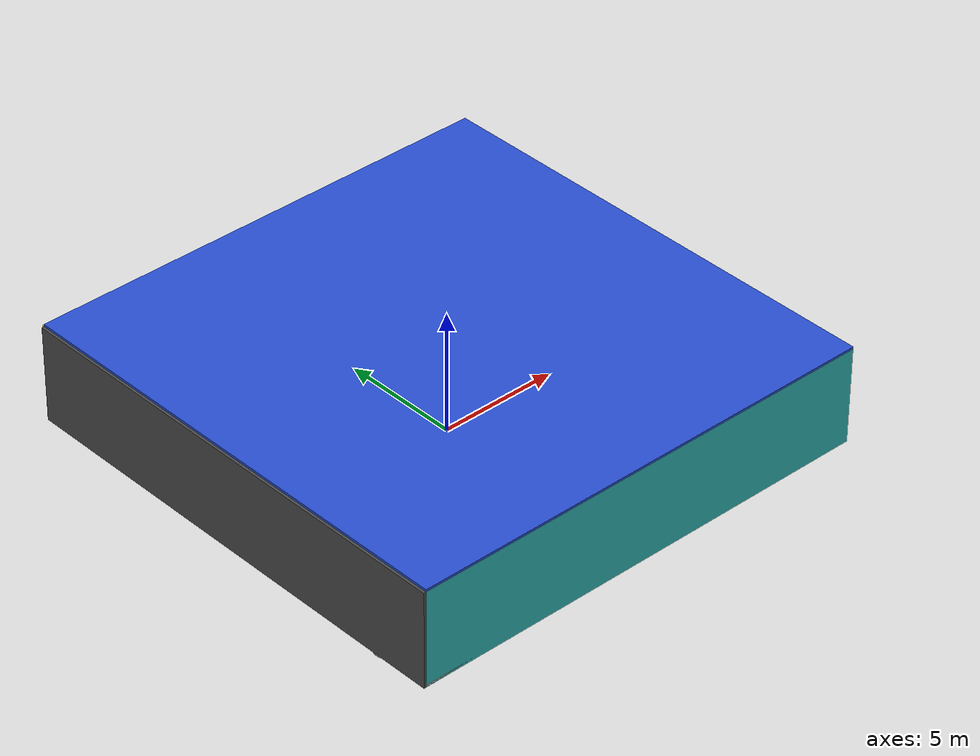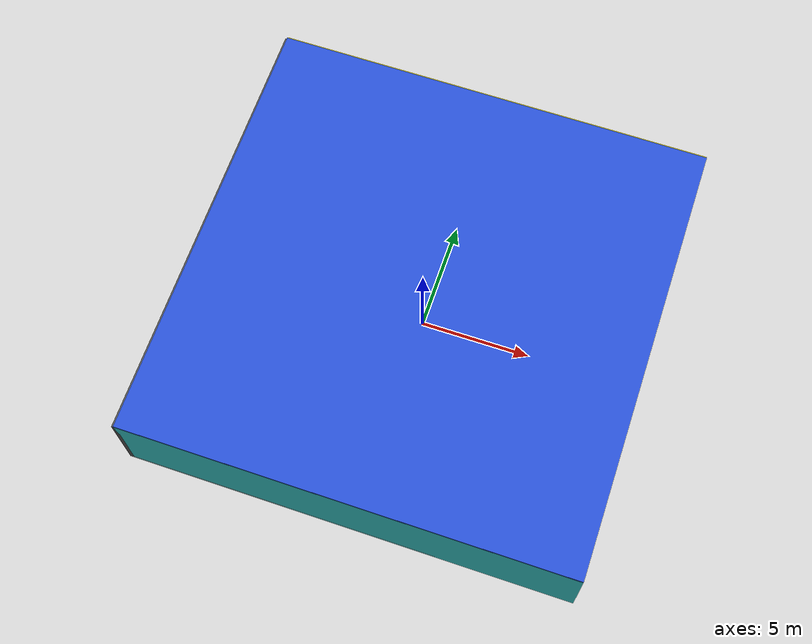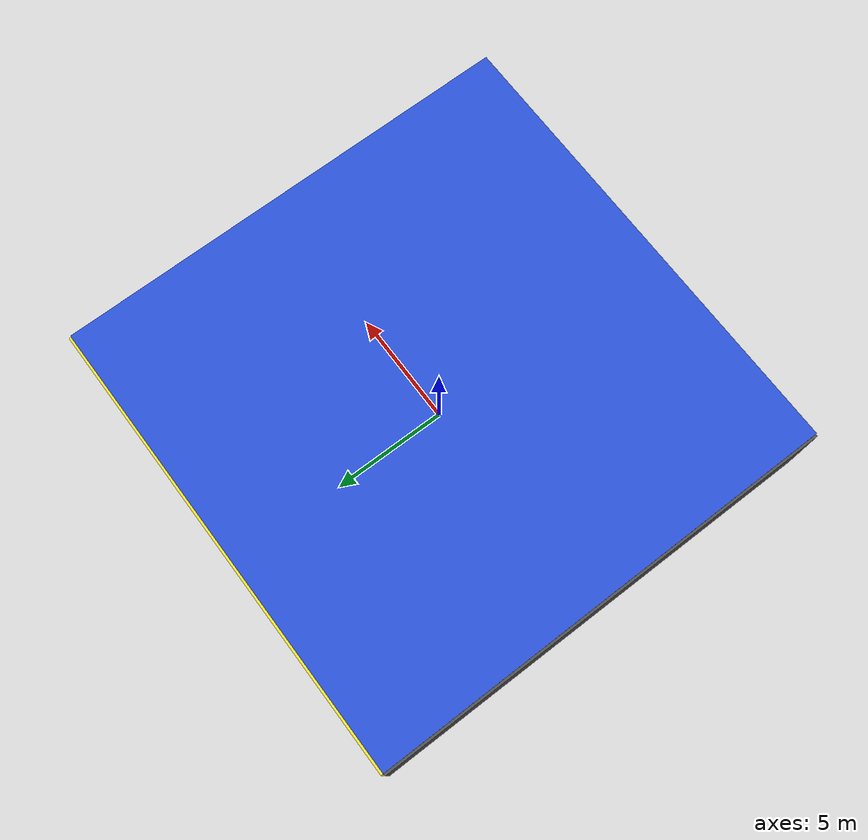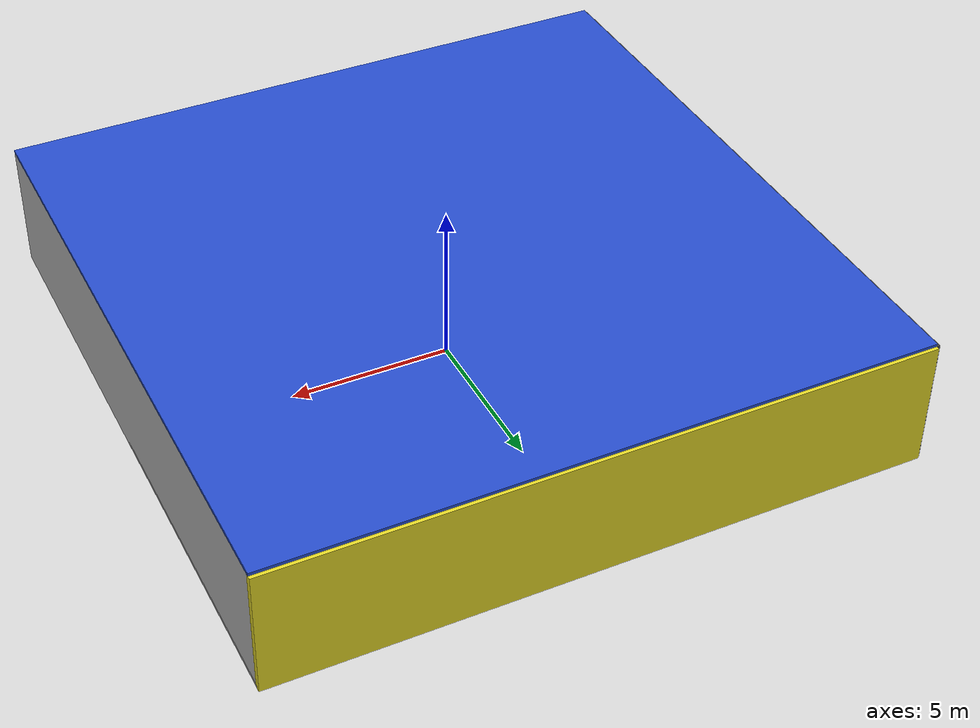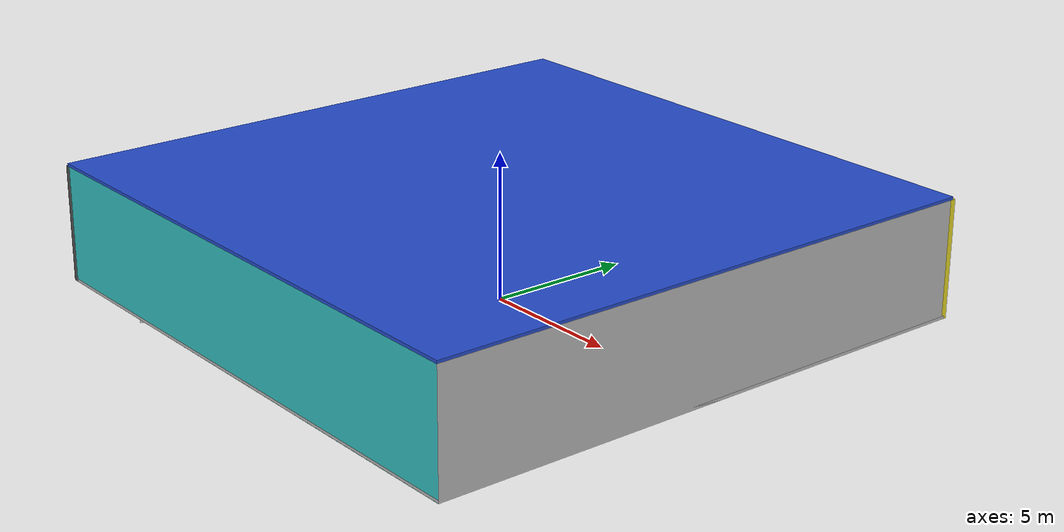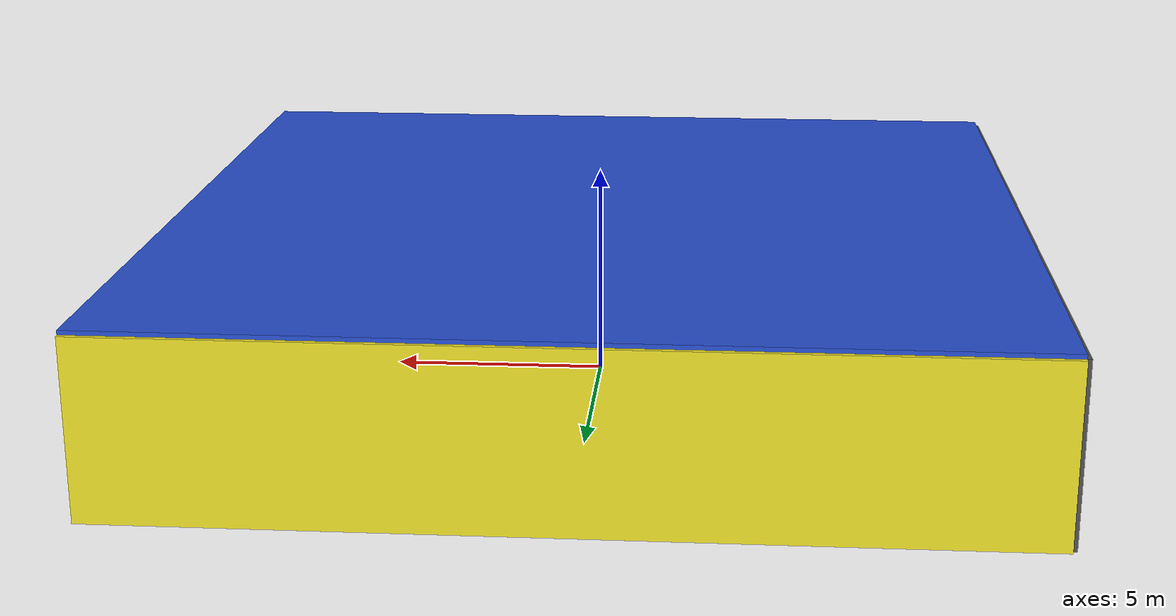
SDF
<sdf version="1.4">
 <world name="default">
  <physics type="ode">
   <max_step_size>0.001</max_step_size>
   <real_time_factor>1</real_time_factor>
   <real_time_update_rate>1000</real_time_update_rate>
   <gravity>0 0 -9.8</gravity>
  </physics>
  <scene><ambient>0.4 0.4 0.4 1</ambient><background>0.7 0.7 0.7 1</background><shadows>1</shadows></scene>
  <model name="Surrounding">
   <static>1</static>
   <link name="Ceiling">
    <collision name="Ceiling_Collision"><geometry><box><size>20 20 0.1</size></box></geometry></collision>
    <visual name="Ceiling_Visual">
     <geometry><box><size>20 20 0.1</size></box></geometry>
     <material>
      <script><uri>file://media/materials/scripts/gazebo.material</uri><name>Gazebo/Blue</name></script>
     </material>
    </visual>
    <pose>0 0 4.05 0 0 0</pose>
   </link>
   <link name="Wall_South">
    <collision name="Wall_South_Collision">
     <geometry><box><size>20 0 4</size></box></geometry>
     <pose>0 0 2 0 -0 0</pose>
    </collision>
    <visual name="Wall_South_Visual">
     <pose>0 0 2 0 -0 0</pose>
     <geometry><box><size>20 0 4</size></box></geometry>
     <material>
      <script><uri>file://media/materials/scripts/gazebo.material</uri><name>Gazebo/TurquoiseGlow</name></script>
     </material>
    </visual>
    <velocity_decay><linear>0</linear><angular>0</angular></velocity_decay>
    <pose>0 -10 0 0 -0 0</pose>
   </link>
   <link name="Wall_East">
    <collision name="Wall_21_Collision">
     <geometry><box><size>20 0 4</size></box></geometry>
     <pose>0 0 2 0 -0 0</pose>
    </collision>
    <visual name="Wall_21_Visual">
     <pose>0 0 2 0 -0 0</pose>
     <geometry><box><size>20 0 4</size></box></geometry>
     <material>
      <script><uri>file://media/materials/scripts/gazebo.material</uri><name>Gazebo/JointAnchor</name></script>
     </material>
    </visual>
    <velocity_decay><linear>0</linear><angular>0</angular></velocity_decay>
    <pose>10 0 0 0 -0 1.5708</pose>
   </link>
   <link name="Wall_North">
    <collision name="Wall_22_Collision">
     <geometry><box><size>20 0.2 4</size></box></geometry>
     <pose>0 0 2 0 -0 0</pose>
    </collision>
    <visual name="Wall_22_Visual">
     <pose>0 0 2 0 -0 0</pose>
     <geometry><box><size>20 0.2 4</size></box></geometry>
     <material>
      <script><uri>file://media/materials/scripts/gazebo.material</uri><name>Gazebo/YellowGlow</name></script>
     </material>
    </visual>
    <velocity_decay><linear>0</linear><angular>0</angular></velocity_decay>
    <pose>0 10 0 0 -0 0</pose>
   </link>
   <link name="Wall_West">
    <collision name="Wall_23_Collision">
     <geometry><box><size>20 0.2 4</size></box></geometry>
     <pose>0 0 2 0 -0 0</pose>
    </collision>
    <visual name="Wall_23_Visual">
     <pose>0 0 2 0 -0 0</pose>
     <geometry><box><size>20 0.2 4</size></box></geometry>
     <material>
      <script><uri>file://media/materials/scripts/gazebo.material</uri><name>Gazebo/Road</name></script>
     </material>
    </visual>
    <velocity_decay><linear>0</linear><angular>0</angular></velocity_decay>
    <pose>-10 0 0 0 0 -1.5708</pose>
   </link>
   <link name="Ground_link">
    <collision name="collision">
     <pose>0 0 .05 0 -0 0</pose>
     <geometry><box><size>20 20 0.1</size></box></geometry>
    </collision>
    <visual name="visual">
     <pose>0 0 .05 0 -0 0</pose>
     <geometry><box><size>20 20 0.1</size></box></geometry>
     <material>
      <script><uri>file://media/materials/scripts/gazebo.material</uri><name>Gazebo/PioneerBody</name></script>
     </material>
    </visual>
   </link>
   <static>1</static>
  </model>
  <spherical_coordinates>
   <surface_model>EARTH_WGS84</surface_model>
   <latitude_deg>0</latitude_deg>
   <longitude_deg>0</longitude_deg>
   <elevation>0</elevation>
   <heading_deg>0</heading_deg>
  </spherical_coordinates>
  <light name="lightball_0" type="diffuse">
   <diffuse>0.8 0.8 0.8 1</diffuse>
   <specular>0.2 0.2 0.2 1</specular>
   <attenuation>
    <range>100</range>
    <constant>0.7</constant>
    <linear>0.01</linear>
    <quadratic>0.001</quadratic>
   </attenuation>
   <direction>-0.5 0.1 -0.9</direction>
   <pose>3.37047927858 -3.32881597295 0.759475851625 0 0 0</pose>
  </light>
  <light name="lightball_1" type="diffuse">
   <diffuse>0.8 0.8 0.8 1</diffuse>
   <specular>0.2 0.2 0.2 1</specular>
   <attenuation>
    <range>100</range>
    <constant>0.7</constant>
    <linear>0.01</linear>
    <quadratic>0.001</quadratic>
   </attenuation>
   <direction>-0.5 0.1 -0.9</direction>
   <pose>6.60399014232 4.44696705426 1.05276903489 0 0 0</pose>
  </light>
  <light name="lightball_2" type="diffuse">
   <diffuse>0.8 0.8 0.8 1</diffuse>
   <specular>0.2 0.2 0.2 1</specular>
   <attenuation>
    <range>100</range>
    <constant>0.7</constant>
    <linear>0.01</linear>
    <quadratic>0.001</quadratic>
   </attenuation>
   <direction>-0.5 0.1 -0.9</direction>
   <pose>-8.17204637635 1.8281979074 3.17647504171 0 0 0</pose>
  </light>
  <light name="lightball_3" type="diffuse">
   <diffuse>0.8 0.8 0.8 1</diffuse>
   <specular>0.2 0.2 0.2 1</specular>
   <attenuation>
    <range>100</range>
    <constant>0.7</constant>
    <linear>0.01</linear>
    <quadratic>0.001</quadratic>
   </attenuation>
   <direction>-0.5 0.1 -0.9</direction>
   <pose>-6.5995427642 5.33141345767 2.16307119585 0 0 0</pose>
  </light>
  <light name="lightball_4" type="diffuse">
   <diffuse>0.8 0.8 0.8 1</diffuse>
   <specular>0.2 0.2 0.2 1</specular>
   <attenuation>
    <range>100</range>
    <constant>0.7</constant>
    <linear>0.01</linear>
    <quadratic>0.001</quadratic>
   </attenuation>
   <direction>-0.5 0.1 -0.9</direction>
   <pose>2.40588822805 -1.25924317007 0.847361517055 0 0 0</pose>
  </light>
  <light name="lightball_5" type="diffuse">
   <diffuse>0.8 0.8 0.8 1</diffuse>
   <specular>0.2 0.2 0.2 1</specular>
   <attenuation>
    <range>100</range>
    <constant>0.7</constant>
    <linear>0.01</linear>
    <quadratic>0.001</quadratic>
   </attenuation>
   <direction>-0.5 0.1 -0.9</direction>
   <pose>1.26760226152 -5.46392983523 1.92224560928 0 0 0</pose>
  </light>
  <light name="lightball_6" type="diffuse">
   <diffuse>0.8 0.8 0.8 1</diffuse>
   <specular>0.2 0.2 0.2 1</specular>
   <attenuation>
    <range>100</range>
    <constant>0.7</constant>
    <linear>0.01</linear>
    <quadratic>0.001</quadratic>
   </attenuation>
   <direction>-0.5 0.1 -0.9</direction>
   <pose>-2.2673164099 7.41610136655 3.32000965669 0 0 0</pose>
  </light>
  <light name="lightball_7" type="diffuse">
   <diffuse>0.8 0.8 0.8 1</diffuse>
   <specular>0.2 0.2 0.2 1</specular>
   <attenuation>
    <range>100</range>
    <constant>0.7</constant>
    <linear>0.01</linear>
    <quadratic>0.001</quadratic>
   </attenuation>
   <direction>-0.5 0.1 -0.9</direction>
   <pose>-7.93341857622 -7.48099838628 1.66076220782 0 0 0</pose>
  </light>
  <light name="lightball_8" type="diffuse">
   <diffuse>0.8 0.8 0.8 1</diffuse>
   <specular>0.2 0.2 0.2 1</specular>
   <attenuation>
    <range>100</range>
    <constant>0.7</constant>
    <linear>0.01</linear>
    <quadratic>0.001</quadratic>
   </attenuation>
   <direction>-0.5 0.1 -0.9</direction>
   <pose>-2.4903508729 2.84039466714 3.11197469769 0 0 0</pose>
  </light>
  <light name="lightball_9" type="diffuse">
   <diffuse>0.8 0.8 0.8 1</diffuse>
   <specular>0.2 0.2 0.2 1</specular>
   <attenuation>
    <range>100</range>
    <constant>0.7</constant>
    <linear>0.01</linear>
    <quadratic>0.001</quadratic>
   </attenuation>
   <direction>-0.5 0.1 -0.9</direction>
   <pose>-7.64560002376 2.04606409215 2.91254611391 0 0 0</pose>
  </light>
  <light name="lightball_10" type="diffuse">
   <diffuse>0.8 0.8 0.8 1</diffuse>
   <specular>0.2 0.2 0.2 1</specular>
   <attenuation>
    <range>100</range>
    <constant>0.7</constant>
    <linear>0.01</linear>
    <quadratic>0.001</quadratic>
   </attenuation>
   <direction>-0.5 0.1 -0.9</direction>
   <pose>0.316888742692 6.12576724896 1.64294998333 0 0 0</pose>
  </light>
  <light name="lightball_11" type="diffuse">
   <diffuse>0.8 0.8 0.8 1</diffuse>
   <specular>0.2 0.2 0.2 1</specular>
   <attenuation>
    <range>100</range>
    <constant>0.7</constant>
    <linear>0.01</linear>
    <quadratic>0.001</quadratic>
   </attenuation>
   <direction>-0.5 0.1 -0.9</direction>
   <pose>-0.915535528484 -3.31751096712 0.966654142124 0 0 0</pose>
  </light>
  <light name="lightball_12" type="diffuse">
   <diffuse>0.8 0.8 0.8 1</diffuse>
   <specular>0.2 0.2 0.2 1</specular>
   <attenuation>
    <range>100</range>
    <constant>0.7</constant>
    <linear>0.01</linear>
    <quadratic>0.001</quadratic>
   </attenuation>
   <direction>-0.5 0.1 -0.9</direction>
   <pose>-4.36968947349 -0.142135279358 0.848695456338 0 0 0</pose>
  </light>
  <include>
   <uri>model://textured_shapes</uri>
   <pose>-8.00189297581 -8.04734775718 0 0 0 0.989831466331</pose>
  </include>
  <include>
   <uri>model://textured_shapes</uri>
   <pose>-4.34744916927 -7.67691704442 0 0 0 1.57640448678</pose>
  </include>
  <include>
   <uri>model://robocup_3Dsim_goal</uri>
   <pose>-5.04662248172 -1.60109185885 0 0 0 1.63240727146</pose>
  </include>
  <include>
   <uri>model://construction_cone</uri>
   <pose>-4.11783811469 1.57901045954 0 0 0 1.84797637969</pose>
  </include>
  <include>
   <uri>model://robocup_3Dsim_goal</uri>
   <pose>-1.35156921618 8.02103047205 0 0 0 0.143879676695</pose>
  </include>
  <include><uri>model://cabinet</uri><pose>5.13808207146 -2.16182824278 0 0 0 1.61445748493</pose></include>
 </world>
</sdf>

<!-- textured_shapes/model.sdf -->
<sdf version="1.6">
  <model name="textured_shapes">
    <pose>0 0 0.5 0 0 0</pose>
    <link name="box">
      <pose>0 -1.5 0 0 0 0</pose>
      <collision name="collision">
        <geometry>
          <box>
            <size>1 1 1</size>
          </box>
        </geometry>
      </collision>
      <visual name="visual">
        <geometry>
          <box>
            <size>1 1 1</size>
          </box>
        </geometry>
        <material>
          <script>
            <uri>model://../model_source/models/textured_shapes/materials/scripts</uri>
            <uri>model://../model_source/models/textured_shapes/materials/textures</uri>
            <name>TexturedShape/Squares</name>
          </script>
        </material>
      </visual>
    </link>
    <link name="sphere">
      <collision name="collision">
        <geometry>
          <sphere>
            <radius>0.5</radius>
          </sphere>
        </geometry>
      </collision>
      <visual name="visual">
        <geometry>
          <sphere>
            <radius>0.5</radius>
          </sphere>
        </geometry>
        <material>
          <script>
            <uri>model://../model_source/models/textured_shapes/materials/scripts</uri>
            <uri>model://../model_source/models/textured_shapes/materials/textures</uri>
            <name>TexturedShape/Squares</name>
          </script>
        </material>
      </visual>
    </link>
    <link name="cylinder">
      <pose>0 1.5 0 0 0 0</pose>
      <collision name="collision">
        <geometry>
          <cylinder>
            <radius>0.5</radius>
            <length>1</length>
          </cylinder>
        </geometry>
      </collision>
      <visual name="visual">
        <geometry>
          <cylinder>
            <radius>0.5</radius>
            <length>1</length>
          </cylinder>
        </geometry>
        <material>
          <script>
            <uri>model://../model_source/models/textured_shapes/materials/scripts</uri>
            <uri>model://../model_source/models/textured_shapes/materials/textures</uri>
            <name>TexturedShape/Squares</name>
          </script>
        </material>
      </visual>
    </link>
  </model>
</sdf>

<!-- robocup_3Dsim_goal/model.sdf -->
<sdf version="1.5">
  <model name="robocup_3d_goal">
    <static>true</static>
    <link name="left_post">
      <pose>0 1.05 0.45 0 0 0</pose>
      <collision name="collision">
        <geometry>
          <cylinder>
            <radius>0.05</radius>
            <length>0.9</length>
          </cylinder>
        </geometry>
      </collision>
      <visual name="visual">
        <geometry>
          <cylinder>
            <radius>0.05</radius>
            <length>0.9</length>
          </cylinder>
        </geometry>
        <material>
          <script>
            <uri>file://media/materials/scripts/gazebo.material</uri>
            <name>Gazebo/ZincYellow</name>
          </script>
        </material>
      </visual>
    </link>
    <link name="left_support_horiz_lower">
      <pose>0.30 1.05 0.01 0 0 0</pose>
      <collision name="collision">
        <geometry>
          <box>
            <size>0.50 0.02 0.02</size>
          </box>
        </geometry>
      </collision>
      <visual name="visual">
        <geometry>
          <box>
            <size>0.50 0.02 0.02</size>
          </box>
        </geometry>
        <material>
          <script>
            <uri>file://media/materials/scripts/gazebo.material</uri>
            <name>Gazebo/White</name>
          </script>
        </material>
      </visual>
    </link>
    <link name="left_support_horiz_upper">
      <pose>0.30 1.05 0.79 0 0 0</pose>
      <collision name="collision">
        <geometry>
          <box>
            <size>0.50 0.02 0.02</size>
          </box>
        </geometry>
      </collision>
      <visual name="visual">
        <geometry>
          <box>
            <size>0.50 0.02 0.02</size>
          </box>
        </geometry>
        <material>
          <script>
            <uri>file://media/materials/scripts/gazebo.material</uri>
            <name>Gazebo/White</name>
          </script>
        </material>
      </visual>
    </link>
    <link name="left_support_vertical">
      <pose>0.56 1.05 0.4 0 1.5708 0</pose>
      <collision name="collision">
        <geometry>
          <box>
            <size>0.80 0.02 0.02</size>
          </box>
        </geometry>
      </collision>
      <visual name="visual">
        <geometry>
          <box>
            <size>0.80 0.02 0.02</size>
          </box>
        </geometry>
        <material>
          <script>
            <uri>file://media/materials/scripts/gazebo.material</uri>
            <name>Gazebo/White</name>
          </script>
        </material>
      </visual>
    </link>
    <link name="right_support_horiz_lower">
      <pose>0.30 -1.05 0.01 0 0 0</pose>
      <collision name="collision">
        <geometry>
          <box>
            <size>0.50 0.02 0.02</size>
          </box>
        </geometry>
      </collision>
      <visual name="visual">
        <geometry>
          <box>
            <size>0.50 0.02 0.02</size>
          </box>
        </geometry>
        <material>
          <script>
            <uri>file://media/materials/scripts/gazebo.material</uri>
            <name>Gazebo/White</name>
          </script>
        </material>
      </visual>
    </link>
    <link name="right_support_horiz_upper">
      <pose>0.30 -1.05 0.79 0 0 0</pose>
      <collision name="collision">
        <geometry>
          <box>
            <size>0.50 0.02 0.02</size>
          </box>
        </geometry>
      </collision>
      <visual name="visual">
        <geometry>
          <box>
            <size>0.50 0.02 0.02</size>
          </box>
        </geometry>
        <material>
          <script>
            <uri>file://media/materials/scripts/gazebo.material</uri>
            <name>Gazebo/White</name>
          </script>
        </material>
      </visual>
    </link>
    <link name="right_support_vertical">
      <pose>0.56 -1.05 0.4 0 1.5708 0</pose>
      <collision name="collision">
        <geometry>
          <box>
            <size>0.80 0.02 0.02</size>
          </box>
        </geometry>
      </collision>
      <visual name="visual">
        <geometry>
          <box>
            <size>0.80 0.02 0.02</size>
          </box>
        </geometry>
        <material>
          <script>
            <uri>file://media/materials/scripts/gazebo.material</uri>
            <name>Gazebo/White</name>
          </script>
        </material>
      </visual>
    </link>
    <link name="center_support_horiz_lower">
      <pose>0.56 0 0.01 0 1.5708 0</pose>
      <collision name="collision">
        <geometry>
          <box>
            <size>0.02 2.08 0.02</size>
          </box>
        </geometry>
      </collision>
      <visual name="visual">
        <geometry>
          <box>
            <size>0.02 2.08 0.02</size>
          </box>
        </geometry>
        <material>
          <script>
            <uri>file://media/materials/scripts/gazebo.material</uri>
            <name>Gazebo/White</name>
          </script>
        </material>
      </visual>
    </link>
    <link name="center_support_horiz_upper">
      <pose>0.56 0 0.79 0 1.5708 0</pose>
      <collision name="collision">
        <geometry>
          <box>
            <size>0.02 2.08 0.02</size>
          </box>
        </geometry>
      </collision>
      <visual name="visual">
        <geometry>
          <box>
            <size>0.02 2.08 0.02</size>
          </box>
        </geometry>
        <material>
          <script>
            <uri>file://media/materials/scripts/gazebo.material</uri>
            <name>Gazebo/White</name>
          </script>
        </material>
      </visual>
    </link>
    <link name="right_post">
      <pose>0 -1.05 0.45 0 0 0</pose>
      <collision name="collision">
        <geometry>
          <cylinder>
            <radius>0.05</radius>
            <length>0.9</length>
          </cylinder>
        </geometry>
      </collision>
      <visual name="visual">
        <geometry>
          <cylinder>
            <radius>0.05</radius>
            <length>0.9</length>
          </cylinder>
        </geometry>
        <material>
          <script>
            <uri>file://media/materials/scripts/gazebo.material</uri>
            <name>Gazebo/ZincYellow</name>
          </script>
        </material>
      </visual>
    </link>
    <link name="crossbar">
      <pose>0 0 0.85 1.57 1.57 0</pose>
      <collision name="collision">
        <geometry>
          <cylinder>
            <radius>0.05</radius>
            <length>2.0</length>
          </cylinder>
        </geometry>
      </collision>
      <visual name="visual">
        <geometry>
          <cylinder>
            <radius>0.05</radius>
            <length>2.0</length>
          </cylinder>
        </geometry>
        <material>
          <script>
            <uri>file://media/materials/scripts/gazebo.material</uri>
            <name>Gazebo/ZincYellow</name>
          </script>
        </material>
      </visual>
    </link>
    <link name="center_net">
      <pose>0.56 0 0.40 0 0 0</pose>
      <collision name="collision">
        <geometry>
          <box>
            <size>0.01 2.1 0.80</size>
          </box>
        </geometry>
      </collision>
      <visual name="visual">
        <geometry>
          <box>
            <size>0.01 2.1 0.80</size>
          </box>
        </geometry>
        <material>
          <script>
            <uri>model://../model_source/models/robocup09_spl_field/materials/scripts/</uri>
            <uri>model://../model_source/models/robocup09_spl_field/materials/textures/</uri>
            <name>RoboCup/Net</name>
          </script>
        </material>
      </visual>
    </link>
    <link name="left_net">
      <pose>0.30 1.05 0.40 0 0 0</pose>
      <collision name="collision">
        <geometry>
          <box>
            <size>0.50 0.01 0.76</size>
          </box>
        </geometry>
      </collision>
      <visual name="visual">
        <geometry>
          <box>
            <size>0.50 0.01 0.76</size>
          </box>
        </geometry>
        <material>
          <script>
            <uri>model://../model_source/models/robocup09_spl_field/materials/scripts/</uri>
            <uri>model://../model_source/models/robocup09_spl_field/materials/textures/</uri>
            <name>RoboCup/Net</name>
          </script>
        </material>
      </visual>
    </link>
    <link name="right_net">
      <pose>0.30 -1.05 0.40 0 0 0</pose>
      <collision name="collision">
        <geometry>
          <box>
            <size>0.50 0.01 0.76</size>
          </box>
        </geometry>
      </collision>
      <visual name="visual">
        <geometry>
          <box>
            <size>0.50 0.01 0.76</size>
          </box>
        </geometry>
        <material>
          <script>
            <uri>model://../model_source/models/robocup09_spl_field/materials/scripts/</uri>
            <uri>model://../model_source/models/robocup09_spl_field/materials/textures/</uri>
            <name>RoboCup/Net</name>
          </script>
        </material>
      </visual>
    </link>
  </model>
</sdf>

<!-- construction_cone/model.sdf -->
<sdf version="1.5">
  <model name="Construction Cone">
    <link name="link">
      <collision name="collision">
        <geometry>
          <mesh>
            <scale>10 10 10</scale>
            <uri>file://isr-testbed/construction_cone/meshes/construction_cone.dae</uri>
          </mesh>
        </geometry>
      </collision>
      <visual name="visual">
        <geometry>
          <mesh>
            <scale>10 10 10</scale>
            <uri>file://isr-testbed/construction_cone/meshes/construction_cone.dae</uri>
          </mesh>
        </geometry>
      </visual>
    </link>
  </model>
</sdf>

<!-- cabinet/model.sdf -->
<sdf version="1.5">
  <model name="cabinet">
    <static>true</static>
    <link name="cabinet_bottom_plate">
      <inertial>
        <pose>0 0 -1 0 0 0</pose>
        <inertia>
          <ixx>2.050000</ixx>
          <ixy>0</ixy>
          <ixz>0</ixz>
          <iyy>2.050000</iyy>
          <iyz>0</iyz>
          <izz>2.050000</izz>
        </inertia>
        <mass>25.000000</mass>
      </inertial>
      <collision name="cabinet_bottom_plate_geom">
        <pose>0 0 0.010000 0 0 0</pose>
        <geometry>
          <box>
            <size>0.450000 0.450000 0.020000</size>
          </box>
        </geometry>
      </collision>
      <visual name="cabinet_bottom_plate_geom_visual">
        <pose>0 0 0.010000 0 0 0</pose>
        <geometry>
          <box>
            <size>0.450000 0.450000 0.020000</size>
          </box>
        </geometry>
        <material>
          <script>
            <uri>model://media/materials/scripts/gazebo.material</uri>
            <name>Gazebo/Wood</name>
          </script>
        </material>
      </visual>
      <collision name="cabinet_bottom_plate_geom_cabinet_back_plate">
        <pose>0.235000 0 0.510000 0 0 0</pose>
        <geometry>
          <box>
            <size>0.020000 0.450000 1.020000</size>
          </box>
        </geometry>
      </collision>
      <visual name="cabinet_bottom_plate_geom_cabinet_back_plate_visual">
        <pose>0.235000 0 0.510000 0 0 0</pose>
        <geometry>
          <box>
            <size>0.020000 0.450000 1.020000</size>
          </box>
        </geometry>
        <material>
          <script>
            <uri>model://media/materials/scripts/gazebo.material</uri>
            <name>Gazebo/Wood</name>
          </script>
        </material>
      </visual>
      <collision name="cabinet_bottom_plate_geom_cabinet_left_plate">
        <pose>0 0.235000 0.510000 0 0 0</pose>
        <geometry>
          <box>
            <size>0.450000 0.020000 1.020000</size>
          </box>
        </geometry>
      </collision>
      <visual name="cabinet_bottom_plate_geom_cabinet_left_plate_visual">
        <pose>0 0.235000 0.510000 0 0 0</pose>
        <geometry>
          <box>
            <size>0.450000 0.020000 1.020000</size>
          </box>
        </geometry>
        <material>
          <script>
            <uri>model://media/materials/scripts/gazebo.material</uri>
            <name>Gazebo/Wood</name>
          </script>
        </material>
      </visual>
      <collision name="cabinet_bottom_plate_geom_cabinet_middle_plate">
        <pose>0 0 0.510000 0 0 0</pose>
        <geometry>
          <box>
            <size>0.450000 0.450000 0.020000</size>
          </box>
        </geometry>
      </collision>
      <visual name="cabinet_bottom_plate_geom_cabinet_middle_plate_visual">
        <pose>0 0 0.510000 0 0 0</pose>
        <geometry>
          <box>
            <size>0.450000 0.450000 0.020000</size>
          </box>
        </geometry>
        <material>
          <script>
            <uri>model://media/materials/scripts/gazebo.material</uri>
            <name>Gazebo/Wood</name>
          </script>
        </material>
      </visual>
      <collision name="cabinet_bottom_plate_geom_cabinet_right_plate">
        <pose>0 -0.235000 0.510000 0 0 0</pose>
        <geometry>
          <box>
            <size>0.450000 0.020000 1.020000</size>
          </box>
        </geometry>
      </collision>
      <visual name="cabinet_bottom_plate_geom_cabinet_right_plate_visual">
        <pose>0 -0.235000 0.510000 0 0 0</pose>
        <geometry>
          <box>
            <size>0.450000 0.020000 1.020000</size>
          </box>
        </geometry>
        <material>
          <script>
            <uri>model://media/materials/scripts/gazebo.material</uri>
            <name>Gazebo/Wood</name>
          </script>
        </material>
      </visual>
      <collision name="cabinet_bottom_plate_geom_cabinet_top_plate">
        <pose>0 0 1.010000 0 0 0</pose>
        <geometry>
          <box>
            <size>0.450000 0.450000 0.020000</size>
          </box>
        </geometry>
      </collision>
      <visual name="cabinet_bottom_plate_geom_cabinet_top_plate_visual">
        <pose>0 0 1.010000 0 0 0</pose>
        <geometry>
          <box>
            <size>0.450000 0.450000 0.020000</size>
          </box>
        </geometry>
        <material>
          <script>
            <uri>model://media/materials/scripts/gazebo.material</uri>
            <name>Gazebo/Wood</name>
          </script>
        </material>
      </visual>
    </link>
  </model>
</sdf>
